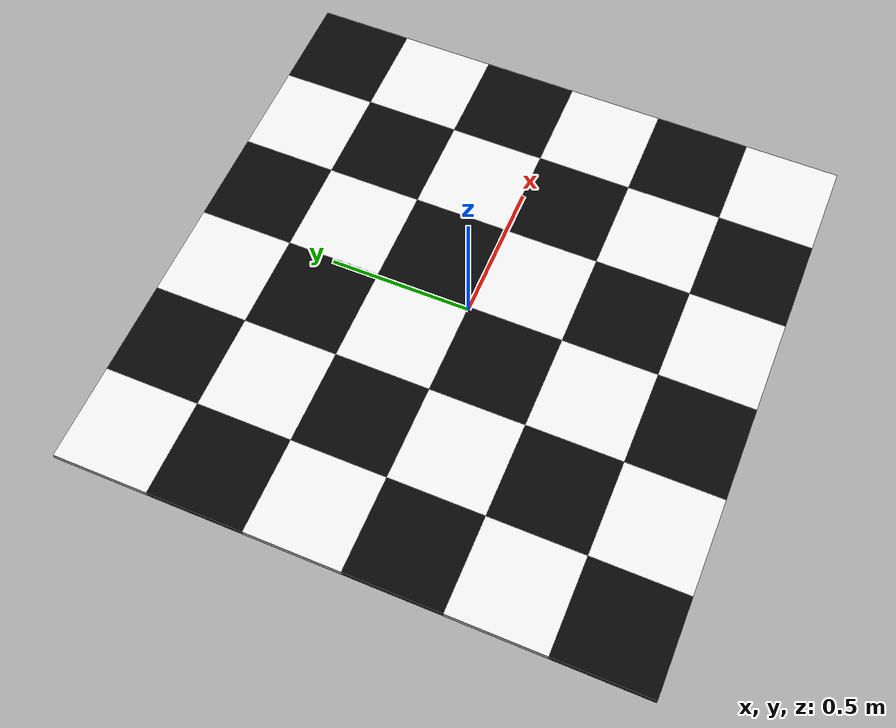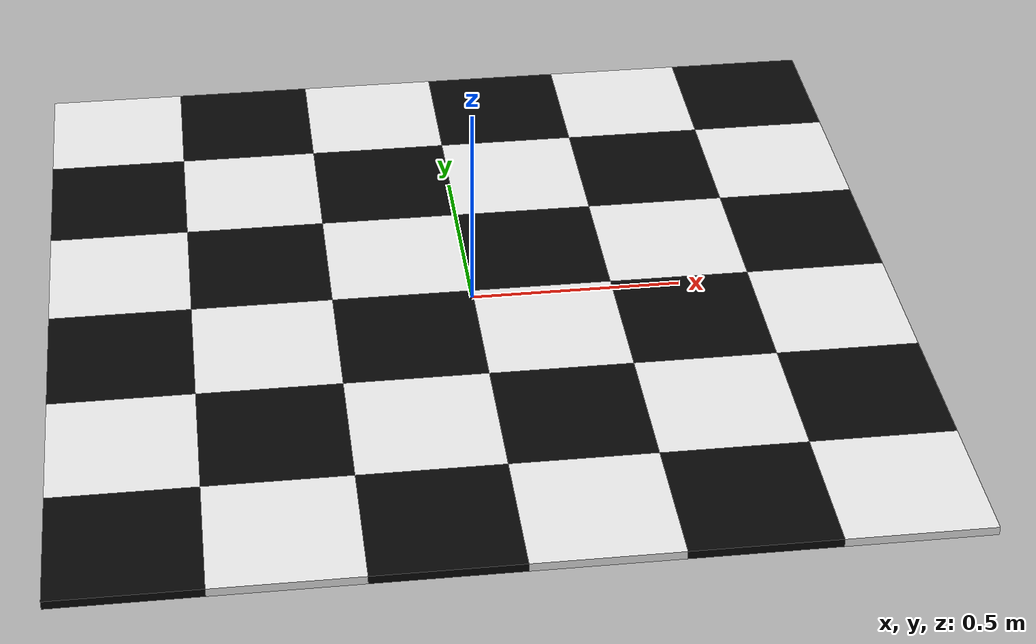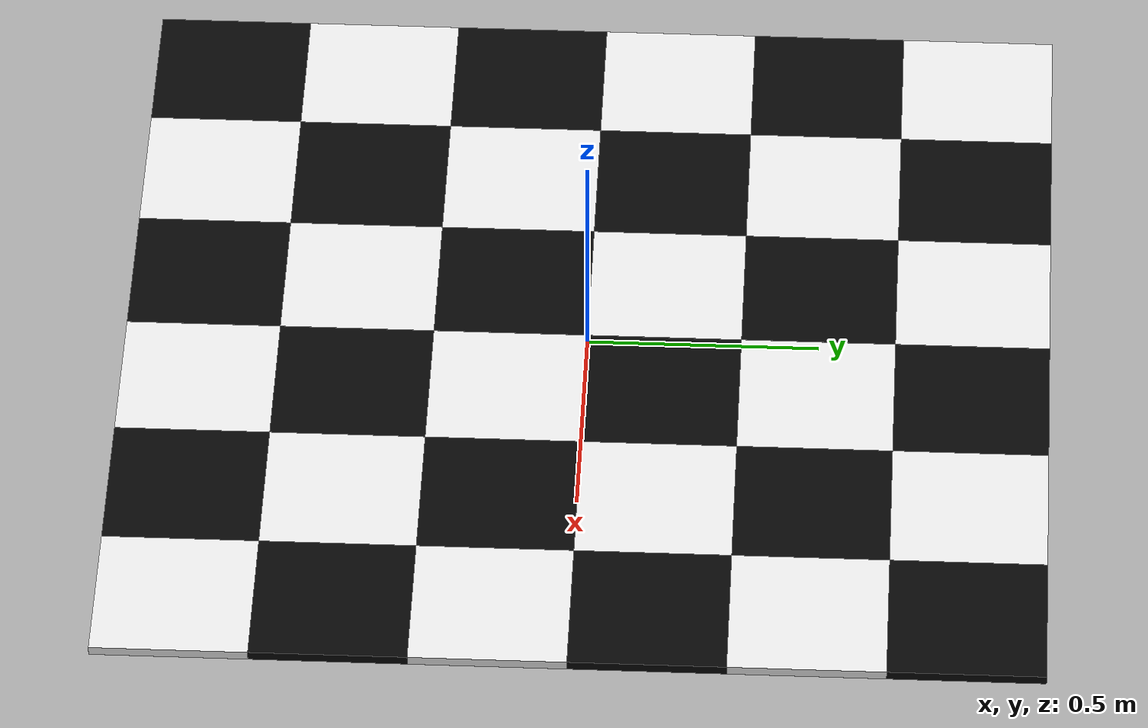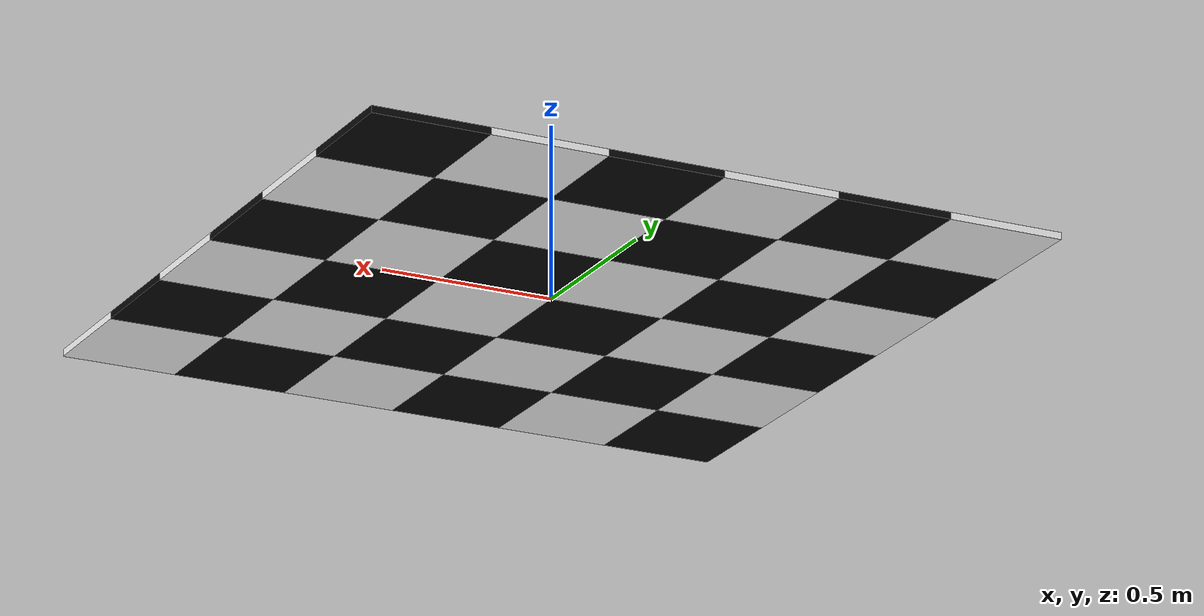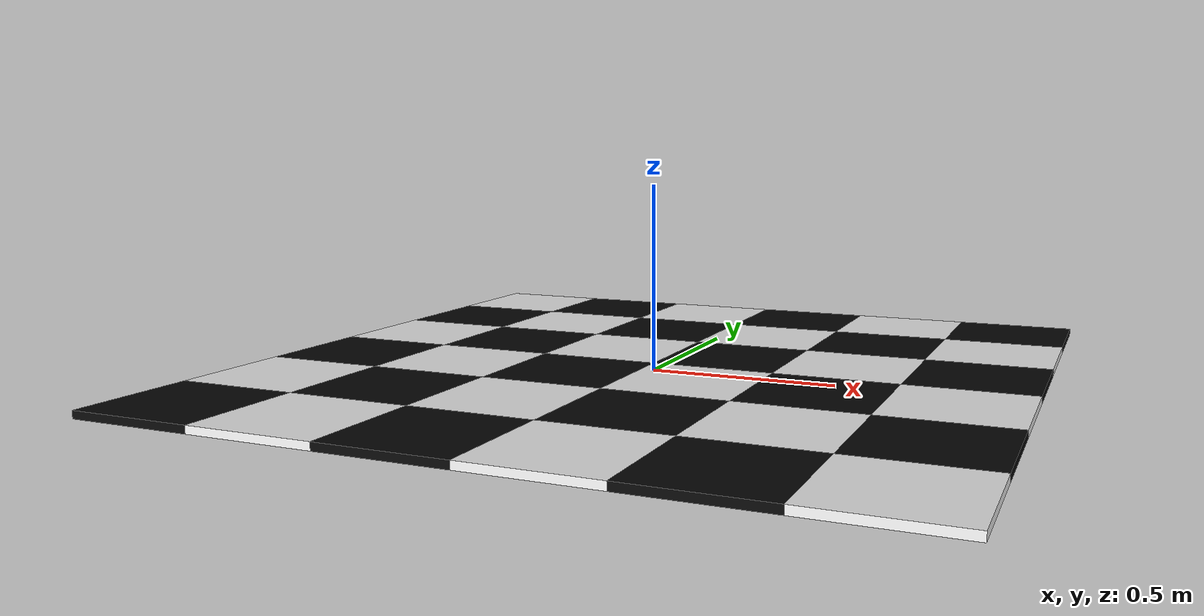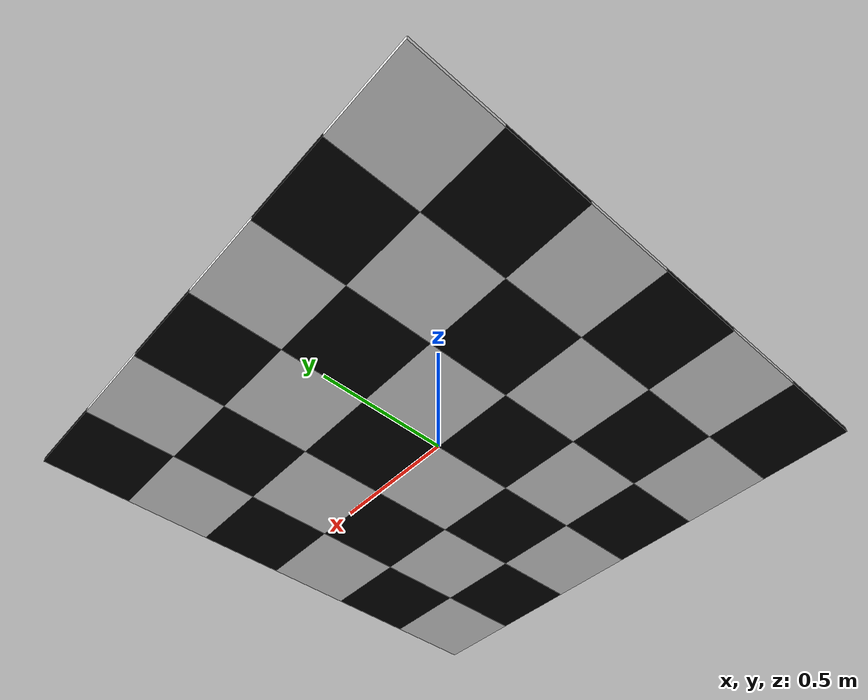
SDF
<?xml version="1.0"?>
<sdf version="1.8">
<model name="checkered_pad">
  <static>true</static>
  <link name="link">
    <collision name="collision">
      <geometry>
        <plane>
          <normal>0 0 1</normal>
          <size>2.0 2.0</size>
        </plane>
      </geometry>
      <surface>
        <friction>
          <ode>
            <mu>0.5</mu>
            <mu2>0.5</mu2>
          </ode>
        </friction>
      </surface>
    </collision>

    <visual name="cell_0_0">
      <cast_shadows>false</cast_shadows>
      <pose>-0.8333 -0.8333 0.01 0 0 0</pose>
      <geometry>
        <box>
          <size>0.3333 0.3333 0.02</size>
        </box>
      </geometry>
      <material>
        <ambient>0.03 0.03 0.03 1</ambient>
        <diffuse>0.03 0.03 0.03 1</diffuse>
        <specular>0.1 0.1 0.1 1</specular>
      </material>
    </visual>
    <visual name="cell_0_1">
      <cast_shadows>false</cast_shadows>
      <pose>-0.5000 -0.8333 0.01 0 0 0</pose>
      <geometry>
        <box>
          <size>0.3333 0.3333 0.02</size>
        </box>
      </geometry>
      <material>
        <ambient>0.95 0.95 0.95 1</ambient>
        <diffuse>0.95 0.95 0.95 1</diffuse>
        <specular>0.1 0.1 0.1 1</specular>
      </material>
    </visual>
    <visual name="cell_0_2">
      <cast_shadows>false</cast_shadows>
      <pose>-0.1667 -0.8333 0.01 0 0 0</pose>
      <geometry>
        <box>
          <size>0.3333 0.3333 0.02</size>
        </box>
      </geometry>
      <material>
        <ambient>0.03 0.03 0.03 1</ambient>
        <diffuse>0.03 0.03 0.03 1</diffuse>
        <specular>0.1 0.1 0.1 1</specular>
      </material>
    </visual>
    <visual name="cell_0_3">
      <cast_shadows>false</cast_shadows>
      <pose>0.1667 -0.8333 0.01 0 0 0</pose>
      <geometry>
        <box>
          <size>0.3333 0.3333 0.02</size>
        </box>
      </geometry>
      <material>
        <ambient>0.95 0.95 0.95 1</ambient>
        <diffuse>0.95 0.95 0.95 1</diffuse>
        <specular>0.1 0.1 0.1 1</specular>
      </material>
    </visual>
    <visual name="cell_0_4">
      <cast_shadows>false</cast_shadows>
      <pose>0.5000 -0.8333 0.01 0 0 0</pose>
      <geometry>
        <box>
          <size>0.3333 0.3333 0.02</size>
        </box>
      </geometry>
      <material>
        <ambient>0.03 0.03 0.03 1</ambient>
        <diffuse>0.03 0.03 0.03 1</diffuse>
        <specular>0.1 0.1 0.1 1</specular>
      </material>
    </visual>
    <visual name="cell_0_5">
      <cast_shadows>false</cast_shadows>
      <pose>0.8333 -0.8333 0.01 0 0 0</pose>
      <geometry>
        <box>
          <size>0.3333 0.3333 0.02</size>
        </box>
      </geometry>
      <material>
        <ambient>0.95 0.95 0.95 1</ambient>
        <diffuse>0.95 0.95 0.95 1</diffuse>
        <specular>0.1 0.1 0.1 1</specular>
      </material>
    </visual>
    <visual name="cell_1_0">
      <cast_shadows>false</cast_shadows>
      <pose>-0.8333 -0.5000 0.01 0 0 0</pose>
      <geometry>
        <box>
          <size>0.3333 0.3333 0.02</size>
        </box>
      </geometry>
      <material>
        <ambient>0.95 0.95 0.95 1</ambient>
        <diffuse>0.95 0.95 0.95 1</diffuse>
        <specular>0.1 0.1 0.1 1</specular>
      </material>
    </visual>
    <visual name="cell_1_1">
      <cast_shadows>false</cast_shadows>
      <pose>-0.5000 -0.5000 0.01 0 0 0</pose>
      <geometry>
        <box>
          <size>0.3333 0.3333 0.02</size>
        </box>
      </geometry>
      <material>
        <ambient>0.03 0.03 0.03 1</ambient>
        <diffuse>0.03 0.03 0.03 1</diffuse>
        <specular>0.1 0.1 0.1 1</specular>
      </material>
    </visual>
    <visual name="cell_1_2">
      <cast_shadows>false</cast_shadows>
      <pose>-0.1667 -0.5000 0.01 0 0 0</pose>
      <geometry>
        <box>
          <size>0.3333 0.3333 0.02</size>
        </box>
      </geometry>
      <material>
        <ambient>0.95 0.95 0.95 1</ambient>
        <diffuse>0.95 0.95 0.95 1</diffuse>
        <specular>0.1 0.1 0.1 1</specular>
      </material>
    </visual>
    <visual name="cell_1_3">
      <cast_shadows>false</cast_shadows>
      <pose>0.1667 -0.5000 0.01 0 0 0</pose>
      <geometry>
        <box>
          <size>0.3333 0.3333 0.02</size>
        </box>
      </geometry>
      <material>
        <ambient>0.03 0.03 0.03 1</ambient>
        <diffuse>0.03 0.03 0.03 1</diffuse>
        <specular>0.1 0.1 0.1 1</specular>
      </material>
    </visual>
    <visual name="cell_1_4">
      <cast_shadows>false</cast_shadows>
      <pose>0.5000 -0.5000 0.01 0 0 0</pose>
      <geometry>
        <box>
          <size>0.3333 0.3333 0.02</size>
        </box>
      </geometry>
      <material>
        <ambient>0.95 0.95 0.95 1</ambient>
        <diffuse>0.95 0.95 0.95 1</diffuse>
        <specular>0.1 0.1 0.1 1</specular>
      </material>
    </visual>
    <visual name="cell_1_5">
      <cast_shadows>false</cast_shadows>
      <pose>0.8333 -0.5000 0.01 0 0 0</pose>
      <geometry>
        <box>
          <size>0.3333 0.3333 0.02</size>
        </box>
      </geometry>
      <material>
        <ambient>0.03 0.03 0.03 1</ambient>
        <diffuse>0.03 0.03 0.03 1</diffuse>
        <specular>0.1 0.1 0.1 1</specular>
      </material>
    </visual>
    <visual name="cell_2_0">
      <cast_shadows>false</cast_shadows>
      <pose>-0.8333 -0.1667 0.01 0 0 0</pose>
      <geometry>
        <box>
          <size>0.3333 0.3333 0.02</size>
        </box>
      </geometry>
      <material>
        <ambient>0.03 0.03 0.03 1</ambient>
        <diffuse>0.03 0.03 0.03 1</diffuse>
        <specular>0.1 0.1 0.1 1</specular>
      </material>
    </visual>
    <visual name="cell_2_1">
      <cast_shadows>false</cast_shadows>
      <pose>-0.5000 -0.1667 0.01 0 0 0</pose>
      <geometry>
        <box>
          <size>0.3333 0.3333 0.02</size>
        </box>
      </geometry>
      <material>
        <ambient>0.95 0.95 0.95 1</ambient>
        <diffuse>0.95 0.95 0.95 1</diffuse>
        <specular>0.1 0.1 0.1 1</specular>
      </material>
    </visual>
    <visual name="cell_2_2">
      <cast_shadows>false</cast_shadows>
      <pose>-0.1667 -0.1667 0.01 0 0 0</pose>
      <geometry>
        <box>
          <size>0.3333 0.3333 0.02</size>
        </box>
      </geometry>
      <material>
        <ambient>0.03 0.03 0.03 1</ambient>
        <diffuse>0.03 0.03 0.03 1</diffuse>
        <specular>0.1 0.1 0.1 1</specular>
      </material>
    </visual>
    <visual name="cell_2_3">
      <cast_shadows>false</cast_shadows>
      <pose>0.1667 -0.1667 0.01 0 0 0</pose>
      <geometry>
        <box>
          <size>0.3333 0.3333 0.02</size>
        </box>
      </geometry>
      <material>
        <ambient>0.95 0.95 0.95 1</ambient>
        <diffuse>0.95 0.95 0.95 1</diffuse>
        <specular>0.1 0.1 0.1 1</specular>
      </material>
    </visual>
    <visual name="cell_2_4">
      <cast_shadows>false</cast_shadows>
      <pose>0.5000 -0.1667 0.01 0 0 0</pose>
      <geometry>
        <box>
          <size>0.3333 0.3333 0.02</size>
        </box>
      </geometry>
      <material>
        <ambient>0.03 0.03 0.03 1</ambient>
        <diffuse>0.03 0.03 0.03 1</diffuse>
        <specular>0.1 0.1 0.1 1</specular>
      </material>
    </visual>
    <visual name="cell_2_5">
      <cast_shadows>false</cast_shadows>
      <pose>0.8333 -0.1667 0.01 0 0 0</pose>
      <geometry>
        <box>
          <size>0.3333 0.3333 0.02</size>
        </box>
      </geometry>
      <material>
        <ambient>0.95 0.95 0.95 1</ambient>
        <diffuse>0.95 0.95 0.95 1</diffuse>
        <specular>0.1 0.1 0.1 1</specular>
      </material>
    </visual>
    <visual name="cell_3_0">
      <cast_shadows>false</cast_shadows>
      <pose>-0.8333 0.1667 0.01 0 0 0</pose>
      <geometry>
        <box>
          <size>0.3333 0.3333 0.02</size>
        </box>
      </geometry>
      <material>
        <ambient>0.95 0.95 0.95 1</ambient>
        <diffuse>0.95 0.95 0.95 1</diffuse>
        <specular>0.1 0.1 0.1 1</specular>
      </material>
    </visual>
    <visual name="cell_3_1">
      <cast_shadows>false</cast_shadows>
      <pose>-0.5000 0.1667 0.01 0 0 0</pose>
      <geometry>
        <box>
          <size>0.3333 0.3333 0.02</size>
        </box>
      </geometry>
      <material>
        <ambient>0.03 0.03 0.03 1</ambient>
        <diffuse>0.03 0.03 0.03 1</diffuse>
        <specular>0.1 0.1 0.1 1</specular>
      </material>
    </visual>
    <visual name="cell_3_2">
      <cast_shadows>false</cast_shadows>
      <pose>-0.1667 0.1667 0.01 0 0 0</pose>
      <geometry>
        <box>
          <size>0.3333 0.3333 0.02</size>
        </box>
      </geometry>
      <material>
        <ambient>0.95 0.95 0.95 1</ambient>
        <diffuse>0.95 0.95 0.95 1</diffuse>
        <specular>0.1 0.1 0.1 1</specular>
      </material>
    </visual>
    <visual name="cell_3_3">
      <cast_shadows>false</cast_shadows>
      <pose>0.1667 0.1667 0.01 0 0 0</pose>
      <geometry>
        <box>
          <size>0.3333 0.3333 0.02</size>
        </box>
      </geometry>
      <material>
        <ambient>0.03 0.03 0.03 1</ambient>
        <diffuse>0.03 0.03 0.03 1</diffuse>
        <specular>0.1 0.1 0.1 1</specular>
      </material>
    </visual>
    <visual name="cell_3_4">
      <cast_shadows>false</cast_shadows>
      <pose>0.5000 0.1667 0.01 0 0 0</pose>
      <geometry>
        <box>
          <size>0.3333 0.3333 0.02</size>
        </box>
      </geometry>
      <material>
        <ambient>0.95 0.95 0.95 1</ambient>
        <diffuse>0.95 0.95 0.95 1</diffuse>
        <specular>0.1 0.1 0.1 1</specular>
      </material>
    </visual>
    <visual name="cell_3_5">
      <cast_shadows>false</cast_shadows>
      <pose>0.8333 0.1667 0.01 0 0 0</pose>
      <geometry>
        <box>
          <size>0.3333 0.3333 0.02</size>
        </box>
      </geometry>
      <material>
        <ambient>0.03 0.03 0.03 1</ambient>
        <diffuse>0.03 0.03 0.03 1</diffuse>
        <specular>0.1 0.1 0.1 1</specular>
      </material>
    </visual>
    <visual name="cell_4_0">
      <cast_shadows>false</cast_shadows>
      <pose>-0.8333 0.5000 0.01 0 0 0</pose>
      <geometry>
        <box>
          <size>0.3333 0.3333 0.02</size>
        </box>
      </geometry>
      <material>
        <ambient>0.03 0.03 0.03 1</ambient>
        <diffuse>0.03 0.03 0.03 1</diffuse>
        <specular>0.1 0.1 0.1 1</specular>
      </material>
    </visual>
    <visual name="cell_4_1">
      <cast_shadows>false</cast_shadows>
      <pose>-0.5000 0.5000 0.01 0 0 0</pose>
      <geometry>
        <box>
          <size>0.3333 0.3333 0.02</size>
        </box>
      </geometry>
      <material>
        <ambient>0.95 0.95 0.95 1</ambient>
        <diffuse>0.95 0.95 0.95 1</diffuse>
        <specular>0.1 0.1 0.1 1</specular>
      </material>
    </visual>
    <visual name="cell_4_2">
      <cast_shadows>false</cast_shadows>
      <pose>-0.1667 0.5000 0.01 0 0 0</pose>
      <geometry>
        <box>
          <size>0.3333 0.3333 0.02</size>
        </box>
      </geometry>
      <material>
        <ambient>0.03 0.03 0.03 1</ambient>
        <diffuse>0.03 0.03 0.03 1</diffuse>
        <specular>0.1 0.1 0.1 1</specular>
      </material>
    </visual>
    <visual name="cell_4_3">
      <cast_shadows>false</cast_shadows>
      <pose>0.1667 0.5000 0.01 0 0 0</pose>
      <geometry>
        <box>
          <size>0.3333 0.3333 0.02</size>
        </box>
      </geometry>
      <material>
        <ambient>0.95 0.95 0.95 1</ambient>
        <diffuse>0.95 0.95 0.95 1</diffuse>
        <specular>0.1 0.1 0.1 1</specular>
      </material>
    </visual>
    <visual name="cell_4_4">
      <cast_shadows>false</cast_shadows>
      <pose>0.5000 0.5000 0.01 0 0 0</pose>
      <geometry>
        <box>
          <size>0.3333 0.3333 0.02</size>
        </box>
      </geometry>
      <material>
        <ambient>0.03 0.03 0.03 1</ambient>
        <diffuse>0.03 0.03 0.03 1</diffuse>
        <specular>0.1 0.1 0.1 1</specular>
      </material>
    </visual>
    <visual name="cell_4_5">
      <cast_shadows>false</cast_shadows>
      <pose>0.8333 0.5000 0.01 0 0 0</pose>
      <geometry>
        <box>
          <size>0.3333 0.3333 0.02</size>
        </box>
      </geometry>
      <material>
        <ambient>0.95 0.95 0.95 1</ambient>
        <diffuse>0.95 0.95 0.95 1</diffuse>
        <specular>0.1 0.1 0.1 1</specular>
      </material>
    </visual>
    <visual name="cell_5_0">
      <cast_shadows>false</cast_shadows>
      <pose>-0.8333 0.8333 0.01 0 0 0</pose>
      <geometry>
        <box>
          <size>0.3333 0.3333 0.02</size>
        </box>
      </geometry>
      <material>
        <ambient>0.95 0.95 0.95 1</ambient>
        <diffuse>0.95 0.95 0.95 1</diffuse>
        <specular>0.1 0.1 0.1 1</specular>
      </material>
    </visual>
    <visual name="cell_5_1">
      <cast_shadows>false</cast_shadows>
      <pose>-0.5000 0.8333 0.01 0 0 0</pose>
      <geometry>
        <box>
          <size>0.3333 0.3333 0.02</size>
        </box>
      </geometry>
      <material>
        <ambient>0.03 0.03 0.03 1</ambient>
        <diffuse>0.03 0.03 0.03 1</diffuse>
        <specular>0.1 0.1 0.1 1</specular>
      </material>
    </visual>
    <visual name="cell_5_2">
      <cast_shadows>false</cast_shadows>
      <pose>-0.1667 0.8333 0.01 0 0 0</pose>
      <geometry>
        <box>
          <size>0.3333 0.3333 0.02</size>
        </box>
      </geometry>
      <material>
        <ambient>0.95 0.95 0.95 1</ambient>
        <diffuse>0.95 0.95 0.95 1</diffuse>
        <specular>0.1 0.1 0.1 1</specular>
      </material>
    </visual>
    <visual name="cell_5_3">
      <cast_shadows>false</cast_shadows>
      <pose>0.1667 0.8333 0.01 0 0 0</pose>
      <geometry>
        <box>
          <size>0.3333 0.3333 0.02</size>
        </box>
      </geometry>
      <material>
        <ambient>0.03 0.03 0.03 1</ambient>
        <diffuse>0.03 0.03 0.03 1</diffuse>
        <specular>0.1 0.1 0.1 1</specular>
      </material>
    </visual>
    <visual name="cell_5_4">
      <cast_shadows>false</cast_shadows>
      <pose>0.5000 0.8333 0.01 0 0 0</pose>
      <geometry>
        <box>
          <size>0.3333 0.3333 0.02</size>
        </box>
      </geometry>
      <material>
        <ambient>0.95 0.95 0.95 1</ambient>
        <diffuse>0.95 0.95 0.95 1</diffuse>
        <specular>0.1 0.1 0.1 1</specular>
      </material>
    </visual>
    <visual name="cell_5_5">
      <cast_shadows>false</cast_shadows>
      <pose>0.8333 0.8333 0.01 0 0 0</pose>
      <geometry>
        <box>
          <size>0.3333 0.3333 0.02</size>
        </box>
      </geometry>
      <material>
        <ambient>0.03 0.03 0.03 1</ambient>
        <diffuse>0.03 0.03 0.03 1</diffuse>
        <specular>0.1 0.1 0.1 1</specular>
      </material>
    </visual>
  </link>
</model>
</sdf>
